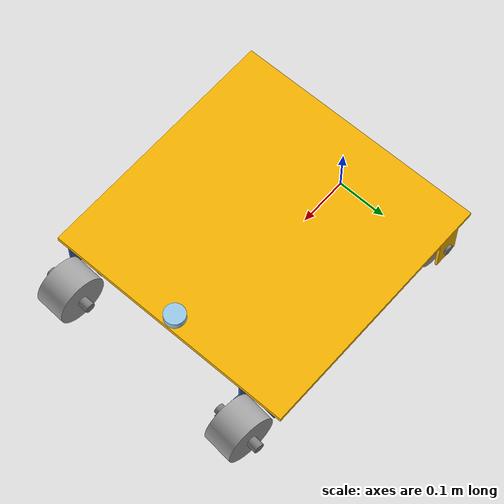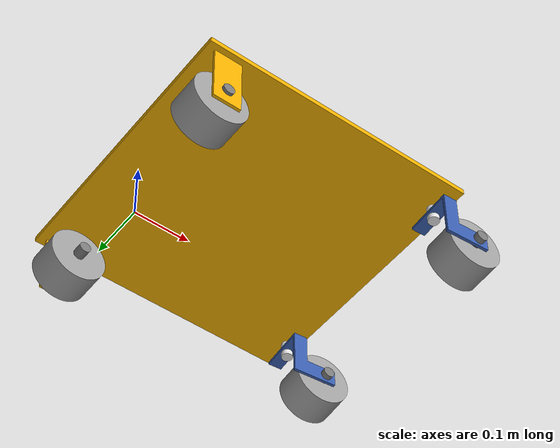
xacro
<?xml version="1.0"?>
<robot name="my_robot" xmlns:xacro="http://www.ros.org/wiki/xacro">

    <xacro:include filename="robot.urdf" />
    <!-- not used with Gazebo - the DiffDrive plugin below drives the wheels instead -->

    <!-- on the ground, directly under the midpoint of the two wheels -->
    <link name="base_footprint" />
    <joint name="base_footprint_joint" type="fixed">
        <parent link="base_footprint" />
        <child link="part4__cut_extrude1" />
        <origin xyz="0.197626 -0.008167 0.141708" rpy="0 0 0" />
    </joint>

    <!-- LIDAR SENSOR FRAME - centre of the lidar body (part6__boss_extrude1) -->
   <link name = "laser_frame"/>
   <joint name = "laser_joint" type = "fixed">
    <parent link = "part4__cut_extrude1"/>
    <child link = "laser_frame"/>
    <origin xyz = "0.24183 0.00817 0.00829" rpy = "0 0 0" />
   </joint>

   <!-- Ignition fortress sensor plugin-->
<gazebo reference = "laser_frame">
   <sensor name = "gpu_lidar" type = "gpu_lidar">
    <ignition_frame_id>laser_frame</ignition_frame_id>
    <update_rate>10</update_rate>
    <topic>scan</topic>
    <lidar>
        <scan>
            <horizontal>
                <samples>360</samples>
                <resolution>1</resolution>
                <min_angle>-3.14159</min_angle>
                <max_angle>3.14159</max_angle>
            </horizontal>
        </scan>
        <range>
            <min>0.15</min>
            <max>12.0</max>
        </range>
    </lidar>
    <always_on>1</always_on>
    <visualize>true</visualize>
   </sensor>
</gazebo>

<!-- Ignition fortress differential drive plugin-->
<gazebo>
    <plugin filename = "ignition-gazebo-diff-drive-system" name = "ignition::gazebo::systems::DiffDrive">
        <left_joint>left_wheel</left_joint>
        <right_joint>right_wheel</right_joint>
        <wheel_separation>0.39</wheel_separation>
        <wheel_radius>0.05</wheel_radius>
        <odom_publish_frequency>30</odom_publish_frequency>
        <topic>cmd_vel_out</topic>
        <odom_topic>odom</odom_topic>
        <tf_topic>diff_drive_tf</tf_topic>
        <frame_id>odom</frame_id>
        <child_frame_id>base_footprint</child_frame_id>
    </plugin>
</gazebo>

<!-- Ignition fortress joint state publisher - wheel + caster angles for robot_state_publisher -->
<gazebo>
    <plugin filename = "ignition-gazebo-joint-state-publisher-system" name = "ignition::gazebo::systems::JointStatePublisher">
        <topic>joint_states</topic>
    </plugin>
</gazebo>

<!-- Wheel grip - casters slide easily, drive wheels grip -->
<gazebo reference="part1__cut_extrude1_3"><mu1>0.01</mu1><mu2>0.01</mu2></gazebo>
<gazebo reference="part1__cut_extrude1_4"><mu1>0.01</mu1><mu2>0.01</mu2></gazebo>
<gazebo reference="part1__cut_extrude1"><mu1>1.0</mu1><mu2>1.0</mu2></gazebo>
<gazebo reference="part1__cut_extrude1_2"><mu1>1.0</mu1><mu2>1.0</mu2></gazebo>

    <!-- IMU FRAME - on the chassis, directly above the middle of the wheel axle -->
    <link name = "imu_link"/>
    <joint name = "imu_joint" type = "fixed">
        <parent link = "part4__cut_extrude1"/>
        <child link = "imu_link"/>
        <origin xyz = "-0.197626 0.008167 0.0" rpy = "0 0 0" />
    </joint>

    <!-- Ignition fortress IMU sensor -->
    <gazebo reference = "imu_link">
        <sensor name = "imu_sensor" type = "imu">
            <ignition_frame_id>imu_link</ignition_frame_id>
            <always_on>1</always_on>
            <update_rate>100</update_rate>
            <topic>imu</topic>
            <imu>
                <!-- small noise, like a real gyro; the EKF expects some -->
                <angular_velocity>
                    <x><noise type = "gaussian"><mean>0.0</mean><stddev>0.0002</stddev></noise></x>
                    <y><noise type = "gaussian"><mean>0.0</mean><stddev>0.0002</stddev></noise></y>
                    <z><noise type = "gaussian"><mean>0.0</mean><stddev>0.0002</stddev></noise></z>
                </angular_velocity>
                <linear_acceleration>
                    <x><noise type = "gaussian"><mean>0.0</mean><stddev>0.017</stddev></noise></x>
                    <y><noise type = "gaussian"><mean>0.0</mean><stddev>0.017</stddev></noise></y>
                    <z><noise type = "gaussian"><mean>0.0</mean><stddev>0.017</stddev></noise></z>
                </linear_acceleration>
            </imu>
        </sensor>
    </gazebo>

        <!-- CAMERA FRAME - front of the chassis, looking forward -->
    <link name = "camera_link"/>
    <joint name = "camera_joint" type = "fixed">
        <parent link = "part4__cut_extrude1"/>
        <child link = "camera_link"/>
        <origin xyz = "0.30 0.00817 0.05" rpy = "0 0 0" />
    </joint>

    <!-- cameras use a different axis convention (z forward, x right, y down) -->
    <link name = "camera_link_optical"/>
    <joint name = "camera_optical_joint" type = "fixed">
        <parent link = "camera_link"/>
        <child link = "camera_link_optical"/>
        <origin xyz = "0 0 0" rpy = "-1.5708 0 -1.5708" />
    </joint>

    <!-- Ignition fortress camera sensor -->
    <gazebo reference = "camera_link">
        <sensor name = "camera" type = "camera">
            <ignition_frame_id>camera_link_optical</ignition_frame_id>
            <always_on>1</always_on>
            <!-- 5 Hz, 320 x 240 - Gazebo renders this in software on WSL, so keep it light -->
            <update_rate>5</update_rate>
            <visualize>true</visualize>
            <topic>camera/image_raw</topic>
            <camera>
                <horizontal_fov>1.089</horizontal_fov>
                <image>
                    <width>320</width>
                    <height>240</height>
                    <format>R8G8B8</format>
                </image>
                <clip>
                    <near>0.05</near>
                    <far>8.0</far>
                </clip>
            </camera>
        </sensor>
    </gazebo>

</robot>

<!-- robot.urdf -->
<!-- Generated using onshape-to-robot -->
<!-- Onshape https://cad.onshape.com/documents/e7eaa5f69740a46df86640b5/w/4beb8b55b0f9d7a3251ff0fb/e/df4ddac1db6dbfc8b2ea36b0 -->
<robot name="walker">
  <!-- Link part4__cut_extrude1 -->
  <link name="part4__cut_extrude1">
    <inertial>
      <origin xyz="0.00737596 0.00816701 -0.00747482" rpy="0 0 0"/>
      <mass value="7.16145"/>
      <inertia ixx="0.158992" ixy="0" ixz="-0.00462613" iyy="0.161486" iyz="0" izz="0.316607"/>
    </inertial>
    <!-- Part part2__boss_extrude1 -->
    <visual>
      <origin xyz="-0.197626 -0.236833 -0.0917082" rpy="-3.14159 -0 -3.14159"/>
      <geometry>
        <mesh filename="package://my_robot_description/meshes/part2__boss_extrude1.stl"/>
      </geometry>
      <material name="part2__boss_extrude1_material">
        <color rgba="0.498039 0.498039 0.498039 1"/>
      </material>
    </visual>
    <collision>
      <origin xyz="-0.197626 -0.236833 -0.0917082" rpy="-3.14159 -0 -3.14159"/>
      <geometry>
        <mesh filename="package://my_robot_description/meshes/part2__boss_extrude1.stl"/>
      </geometry>
    </collision>
    <!-- Part part4__cut_extrude1 -->
    <visual>
      <origin xyz="0.263231 0.258167 -0.00920823" rpy="1.5708 -0 3.14159"/>
      <geometry>
        <mesh filename="package://my_robot_description/meshes/part4__cut_extrude1.stl"/>
      </geometry>
      <material name="part4__cut_extrude1_material">
        <color rgba="0.980392 0.713725 0.00392157 1"/>
      </material>
    </visual>
    <collision>
      <origin xyz="0.263231 0.258167 -0.00920823" rpy="1.5708 -0 3.14159"/>
      <geometry>
        <mesh filename="package://my_robot_description/meshes/part4__cut_extrude1.stl"/>
      </geometry>
    </collision>
    <!-- Part part5__boss_extrude1 -->
    <visual>
      <origin xyz="0.243654 -0.186833 -0.0392082" rpy="1.5708 -0 3.14159"/>
      <geometry>
        <mesh filename="package://my_robot_description/meshes/part5__boss_extrude1.stl"/>
      </geometry>
      <material name="part5__boss_extrude1_material">
        <color rgba="0.917647 0.917647 0.917647 1"/>
      </material>
    </visual>
    <collision>
      <origin xyz="0.243654 -0.186833 -0.0392082" rpy="1.5708 -0 3.14159"/>
      <geometry>
        <mesh filename="package://my_robot_description/meshes/part5__boss_extrude1.stl"/>
      </geometry>
    </collision>
    <!-- Part part6__boss_extrude1 -->
    <visual>
      <origin xyz="0.241831 0.00816701 0.000791767" rpy="1.5708 -0 3.14159"/>
      <geometry>
        <mesh filename="package://my_robot_description/meshes/part6__boss_extrude1.stl"/>
      </geometry>
      <material name="part6__boss_extrude1_material">
        <color rgba="0.615686 0.811765 0.929412 1"/>
      </material>
    </visual>
    <collision>
      <origin xyz="0.241831 0.00816701 0.000791767" rpy="1.5708 -0 3.14159"/>
      <geometry>
        <mesh filename="package://my_robot_description/meshes/part6__boss_extrude1.stl"/>
      </geometry>
    </collision>
    <!-- Part part2__boss_extrude1_2 -->
    <visual>
      <origin xyz="-0.197626 0.253167 -0.0917082" rpy="-0 -0 3.14159"/>
      <geometry>
        <mesh filename="package://my_robot_description/meshes/part2__boss_extrude1.stl"/>
      </geometry>
      <material name="part2__boss_extrude1_2_material">
        <color rgba="0.498039 0.498039 0.498039 1"/>
      </material>
    </visual>
    <collision>
      <origin xyz="-0.197626 0.253167 -0.0917082" rpy="-0 -0 3.14159"/>
      <geometry>
        <mesh filename="package://my_robot_description/meshes/part2__boss_extrude1.stl"/>
      </geometry>
    </collision>
    <!-- Part part5__boss_extrude1_2 -->
    <visual>
      <origin xyz="0.243654 0.203167 -0.0392082" rpy="1.5708 0 3.14159"/>
      <geometry>
        <mesh filename="package://my_robot_description/meshes/part5__boss_extrude1.stl"/>
      </geometry>
      <material name="part5__boss_extrude1_2_material">
        <color rgba="0.917647 0.917647 0.917647 1"/>
      </material>
    </visual>
    <collision>
      <origin xyz="0.243654 0.203167 -0.0392082" rpy="1.5708 0 3.14159"/>
      <geometry>
        <mesh filename="package://my_robot_description/meshes/part5__boss_extrude1.stl"/>
      </geometry>
    </collision>
  </link>

  <!-- Link part1__cut_extrude1 -->
  <link name="part1__cut_extrude1">
    <inertial>
      <origin xyz="0 0 -0" rpy="0 0 0"/>
      <mass value="0.497628"/>
      <inertia ixx="0.000472747" ixy="-0" ixz="-0" iyy="0.000472747" iyz="-0" izz="0.000646917"/>
    </inertial>
    <!-- Part part1__cut_extrude1 -->
    <visual>
      <origin xyz="0 0 0.03" rpy="-1.5708 0 -0"/>
      <geometry>
        <mesh filename="package://my_robot_description/meshes/part1__cut_extrude1.stl"/>
      </geometry>
      <material name="part1__cut_extrude1_material">
        <color rgba="0.647059 0.647059 0.647059 1"/>
      </material>
    </visual>
    <!-- cylinder instead of mesh - Gazebo wheels grip properly with a simple shape -->
    <collision>
      <origin xyz="0 0 0" rpy="0 0 0"/>
      <geometry>
        <cylinder radius="0.05" length="0.06"/>
      </geometry>
    </collision>
  </link>
  <!-- Joint from part4__cut_extrude1 to part1__cut_extrude1 -->
  <joint name="left_wheel" type="continuous">
    <origin xyz="-0.197626 0.203167 -0.0917082" rpy="-1.5708 -0.0573371 -0"/>
    <parent link="part4__cut_extrude1"/>
    <child link="part1__cut_extrude1"/>
    <axis xyz="0 0 1"/>
    <limit effort="10" velocity="10"/>
  </joint>
  <!-- Link part1__cut_extrude1_2 -->
  <link name="part1__cut_extrude1_2">
    <inertial>
      <origin xyz="-0 0 0" rpy="0 0 0"/>
      <mass value="0.497628"/>
      <inertia ixx="0.000472747" ixy="-0" ixz="-0" iyy="0.000472747" iyz="0" izz="0.000646917"/>
    </inertial>
    <!-- Part part1__cut_extrude1_2 -->
    <visual>
      <origin xyz="0 0 0.03" rpy="-1.5708 0 -0"/>
      <geometry>
        <mesh filename="package://my_robot_description/meshes/part1__cut_extrude1.stl"/>
      </geometry>
      <material name="part1__cut_extrude1_2_material">
        <color rgba="0.647059 0.647059 0.647059 1"/>
      </material>
    </visual>
    <!-- cylinder instead of mesh - Gazebo wheels grip properly with a simple shape -->
    <collision>
      <origin xyz="0 0 0" rpy="0 0 0"/>
      <geometry>
        <cylinder radius="0.05" length="0.06"/>
      </geometry>
    </collision>
  </link>
  <!-- Joint from part4__cut_extrude1 to part1__cut_extrude1_2 -->
  <joint name="right_wheel" type="continuous">
    <origin xyz="-0.197626 -0.186833 -0.0917082" rpy="1.5708 0 -0"/>
    <parent link="part4__cut_extrude1"/>
    <child link="part1__cut_extrude1_2"/>
    <axis xyz="0 0 -1"/>
    <limit effort="10" velocity="10"/>
  </joint>
  <!-- Link part3__cut_extrude1 -->
  <link name="part3__cut_extrude1">
    <inertial>
      <origin xyz="0.0316928 -0.0156171 -0.0549314" rpy="0 0 0"/>
      <mass value="0.154303"/>
      <inertia ixx="0.000245313" ixy="-2.67644e-05" ixz="7.41806e-05" iyy="0.000202046" iyz="-2.78331e-06" izz="0.000224642"/>
    </inertial>
    <!-- Part part3__cut_extrude1 -->
    <visual>
      <origin xyz="-0.0126879 -0.04 -0.085" rpy="-3.14159 -0 0"/>
      <geometry>
        <mesh filename="package://my_robot_description/meshes/part3__cut_extrude1.stl"/>
      </geometry>
      <material name="part3__cut_extrude1_material">
        <color rgba="0.231373 0.380392 0.705882 1"/>
      </material>
    </visual>
    <collision>
      <origin xyz="-0.0126879 -0.04 -0.085" rpy="-3.14159 -0 0"/>
      <geometry>
        <mesh filename="package://my_robot_description/meshes/part3__cut_extrude1.stl"/>
      </geometry>
    </collision>
    <!-- Part part2__boss_extrude1_3 -->
    <visual>
      <origin xyz="0.0498121 -0.055 -0.07" rpy="0 0 0"/>
      <geometry>
        <mesh filename="package://my_robot_description/meshes/part2__boss_extrude1.stl"/>
      </geometry>
      <material name="part2__boss_extrude1_3_material">
        <color rgba="0.498039 0.498039 0.498039 1"/>
      </material>
    </visual>
    <collision>
      <origin xyz="0.0498121 -0.055 -0.07" rpy="0 0 0"/>
      <geometry>
        <mesh filename="package://my_robot_description/meshes/part2__boss_extrude1.stl"/>
      </geometry>
    </collision>
  </link>
  <!-- Link part1__cut_extrude1_3 -->
  <link name="part1__cut_extrude1_3">
    <inertial>
      <origin xyz="-0 0 -0" rpy="0 0 0"/>
      <mass value="0.497628"/>
      <inertia ixx="0.000472747" ixy="0" ixz="-0" iyy="0.000472747" iyz="-0" izz="0.000646917"/>
    </inertial>
    <!-- Part part1__cut_extrude1_3 -->
    <visual>
      <origin xyz="-0 0 0.03" rpy="-1.5708 0 0"/>
      <geometry>
        <mesh filename="package://my_robot_description/meshes/part1__cut_extrude1.stl"/>
      </geometry>
      <material name="part1__cut_extrude1_3_material">
        <color rgba="0.647059 0.647059 0.647059 1"/>
      </material>
    </visual>
    <!-- cylinder instead of mesh; radius 2.5 mm under the real 0.05 so the caster
         sits level with the drive wheels (in CAD it reaches 2.5 mm lower) -->
    <collision>
      <origin xyz="0 0 0" rpy="0 0 0"/>
      <geometry>
        <cylinder radius="0.0475" length="0.06"/>
      </geometry>
    </collision>
  </link>
  <!-- Joint from part3__cut_extrude1 to part1__cut_extrude1_3 -->
  <joint name="caster_left_wheel" type="continuous">
    <origin xyz="0.0498121 -0.005 -0.07" rpy="1.5708 0.143246 3.14159"/>
    <parent link="part3__cut_extrude1"/>
    <child link="part1__cut_extrude1_3"/>
    <axis xyz="0 0 1"/>
    <limit effort="10" velocity="10"/>
  </joint>
  <!-- Joint from part4__cut_extrude1 to part3__cut_extrude1 -->
  <joint name="caster_left_swivel_continuous" type="continuous">
    <origin xyz="0.243654 0.203167 -0.0242082" rpy="0 -0 -0.0947716"/>
    <parent link="part4__cut_extrude1"/>
    <child link="part3__cut_extrude1"/>
    <axis xyz="0 0 1"/>
    <limit effort="10" velocity="10"/>
  </joint>
  <!-- Link part3__cut_extrude1_2 -->
  <link name="part3__cut_extrude1_2">
    <inertial>
      <origin xyz="0.0316928 -0.0156171 -0.0549314" rpy="0 0 0"/>
      <mass value="0.154303"/>
      <inertia ixx="0.000245313" ixy="-2.67644e-05" ixz="7.41806e-05" iyy="0.000202046" iyz="-2.78331e-06" izz="0.000224642"/>
    </inertial>
    <!-- Part part3__cut_extrude1_2 -->
    <visual>
      <origin xyz="-0.0126879 -0.04 -0.085" rpy="-3.14159 0 0"/>
      <geometry>
        <mesh filename="package://my_robot_description/meshes/part3__cut_extrude1.stl"/>
      </geometry>
      <material name="part3__cut_extrude1_2_material">
        <color rgba="0.231373 0.380392 0.705882 1"/>
      </material>
    </visual>
    <collision>
      <origin xyz="-0.0126879 -0.04 -0.085" rpy="-3.14159 0 0"/>
      <geometry>
        <mesh filename="package://my_robot_description/meshes/part3__cut_extrude1.stl"/>
      </geometry>
    </collision>
    <!-- Part part2__boss_extrude1_4 -->
    <visual>
      <origin xyz="0.0498121 -0.055 -0.07" rpy="0 0 0"/>
      <geometry>
        <mesh filename="package://my_robot_description/meshes/part2__boss_extrude1.stl"/>
      </geometry>
      <material name="part2__boss_extrude1_4_material">
        <color rgba="0.498039 0.498039 0.498039 1"/>
      </material>
    </visual>
    <collision>
      <origin xyz="0.0498121 -0.055 -0.07" rpy="0 0 0"/>
      <geometry>
        <mesh filename="package://my_robot_description/meshes/part2__boss_extrude1.stl"/>
      </geometry>
    </collision>
  </link>
  <!-- Link part1__cut_extrude1_4 -->
  <link name="part1__cut_extrude1_4">
    <inertial>
      <origin xyz="0 0 0" rpy="0 0 0"/>
      <mass value="0.497628"/>
      <inertia ixx="0.000472747" ixy="-0" ixz="0" iyy="0.000472747" iyz="0" izz="0.000646917"/>
    </inertial>
    <!-- Part part1__cut_extrude1_4 -->
    <visual>
      <origin xyz="0 0 0.03" rpy="-1.5708 -0 0"/>
      <geometry>
        <mesh filename="package://my_robot_description/meshes/part1__cut_extrude1.stl"/>
      </geometry>
      <material name="part1__cut_extrude1_4_material">
        <color rgba="0.647059 0.647059 0.647059 1"/>
      </material>
    </visual>
    <!-- cylinder instead of mesh; radius 2.5 mm under the real 0.05 so the caster
         sits level with the drive wheels (in CAD it reaches 2.5 mm lower) -->
    <collision>
      <origin xyz="0 0 0" rpy="0 0 0"/>
      <geometry>
        <cylinder radius="0.0475" length="0.06"/>
      </geometry>
    </collision>
  </link>
  <!-- Joint from part3__cut_extrude1_2 to part1__cut_extrude1_4 -->
  <joint name="caster_right_wheel" type="continuous">
    <origin xyz="0.0498121 -0.005 -0.07" rpy="-1.5708 7.2504e-08 0"/>
    <parent link="part3__cut_extrude1_2"/>
    <child link="part1__cut_extrude1_4"/>
    <axis xyz="0 0 1"/>
    <limit effort="10" velocity="10"/>
  </joint>
  <!-- Joint from part4__cut_extrude1 to part3__cut_extrude1_2 -->
  <joint name="caster_right_swivel_continuous" type="continuous">
    <origin xyz="0.243654 -0.186833 -0.0242082" rpy="0 -0 -0.0573371"/>
    <parent link="part4__cut_extrude1"/>
    <child link="part3__cut_extrude1_2"/>
    <axis xyz="0 0 1"/>
    <limit effort="10" velocity="10"/>
  </joint>
</robot>
